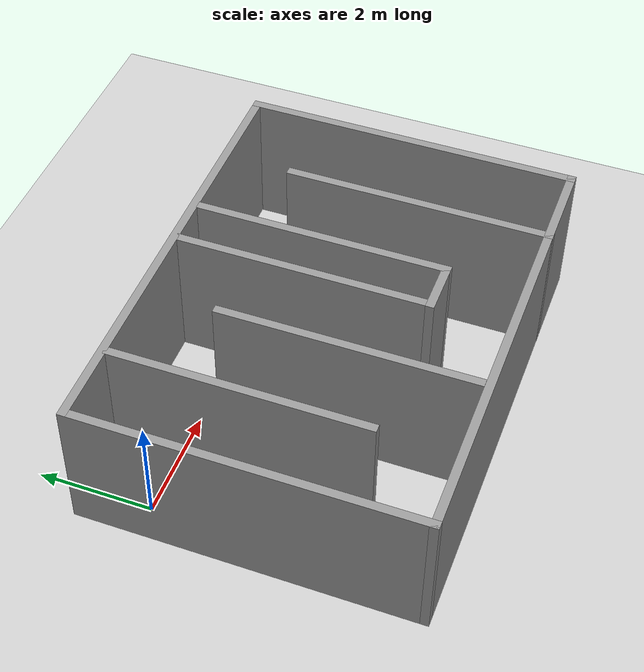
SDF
<sdf version="1.7">
 <world name="default">
  <light name="sun" type="directional">
   <pose>0 0 10 0 -0 0</pose>
   <diffuse>0.8 0.8 0.8 1</diffuse>
   <specular>0.2 0.2 0.2 1</specular>
   <attenuation>
    <range>1000</range>
    <constant>0.9</constant>
    <linear>0.01</linear>
    <quadratic>0.001</quadratic>
   </attenuation>
   <direction>-0.5 0.1 -0.9</direction>
   <spot><inner_angle>0</inner_angle><outer_angle>0</outer_angle><falloff>0</falloff></spot>
  </light>
  <model name="ground_plane">
   <static>1</static>
   <link name="link">
    <collision name="collision">
     <geometry><plane><normal>0 0 1</normal><size>100 100</size></plane></geometry>
     <surface><friction><ode><mu>100</mu><mu2>50</mu2></ode></friction></surface>
    </collision>
    <visual name="visual">
     <cast_shadows>0</cast_shadows>
     <geometry><plane><normal>0 0 1</normal><size>100 100</size></plane></geometry>
     <material>
      <script><uri>file://media/materials/scripts/gazebo.material</uri><name>Gazebo/Grey</name></script>
     </material>
    </visual>
   </link>
  </model>
  <gravity>0 0 -9.8</gravity>
  <magnetic_field>6e-06 2.3e-05 -4.2e-05</magnetic_field>
  <atmosphere type="adiabatic"/>
  <physics type="ode">
   <max_step_size>0.001</max_step_size>
   <real_time_factor>1</real_time_factor>
   <real_time_update_rate>1000</real_time_update_rate>
  </physics>
  <scene><ambient>0.4 0.4 0.4 1</ambient><background>0.7 0.7 0.7 1</background><shadows>1</shadows></scene>
  <audio><device>default</device></audio>
  <spherical_coordinates>
   <surface_model>EARTH_WGS84</surface_model>
   <latitude_deg>0</latitude_deg>
   <longitude_deg>0</longitude_deg>
   <elevation>0</elevation>
   <heading_deg>0</heading_deg>
  </spherical_coordinates>
  <model name="yoko">
   <pose>3.47685 -1.92795 0 0 -0 0</pose>
   <link name="Wall_0">
    <collision name="Wall_0_Collision">
     <geometry><box><size>6 0.15 2.5</size></box></geometry>
     <pose>0 0 1.25 0 -0 0</pose>
    </collision>
    <visual name="Wall_0_Visual">
     <pose>0 0 1.25 0 -0 0</pose>
     <geometry><box><size>6 0.15 2.5</size></box></geometry>
     <material>
      <script><uri>file://media/materials/scripts/gazebo.material</uri><name>Gazebo/Grey</name></script>
      <ambient>1 1 1 1</ambient>
     </material>
     <meta><layer>0</layer></meta>
    </visual>
    <pose>-3.925 0.063866 0 0 -0 1.5708</pose>
   </link>
   <link name="Wall_1">
    <collision name="Wall_1_Collision">
     <geometry><box><size>8 0.15 2.5</size></box></geometry>
     <pose>0 0 1.25 0 -0 0</pose>
    </collision>
    <visual name="Wall_1_Visual">
     <pose>0 0 1.25 0 -0 0</pose>
     <geometry><box><size>8 0.15 2.5</size></box></geometry>
     <material>
      <script><uri>file://media/materials/scripts/gazebo.material</uri><name>Gazebo/Grey</name></script>
      <ambient>1 1 1 1</ambient>
     </material>
     <meta><layer>0</layer></meta>
    </visual>
    <pose>0 2.98887 0 0 -0 0</pose>
   </link>
   <link name="Wall_11">
    <collision name="Wall_11_Collision">
     <geometry><box><size>4.5 0.15 2.5</size></box></geometry>
     <pose>0 0 1.25 0 -0 0</pose>
    </collision>
    <visual name="Wall_11_Visual">
     <pose>0 0 1.25 0 -0 0</pose>
     <geometry><box><size>4.5 0.15 2.5</size></box></geometry>
     <material>
      <script><uri>file://media/materials/scripts/gazebo.material</uri><name>Gazebo/Grey</name></script>
      <ambient>1 1 1 1</ambient>
     </material>
     <meta><layer>0</layer></meta>
    </visual>
    <pose>0.184704 0.814016 0 0 -0 1.5708</pose>
   </link>
   <link name="Wall_2">
    <collision name="Wall_2_Collision">
     <geometry><box><size>6 0.15 2.5</size></box></geometry>
     <pose>0 0 1.25 0 -0 0</pose>
    </collision>
    <visual name="Wall_2_Visual">
     <pose>0 0 1.25 0 -0 0</pose>
     <geometry><box><size>6 0.15 2.5</size></box></geometry>
     <material>
      <script><uri>file://media/materials/scripts/gazebo.material</uri><name>Gazebo/Grey</name></script>
      <ambient>1 1 1 1</ambient>
     </material>
     <meta><layer>0</layer></meta>
    </visual>
    <pose>3.925 0.063866 0 0 -0 -1.5708</pose>
   </link>
   <link name="Wall_22">
    <collision name="Wall_22_Collision">
     <geometry><box><size>4.5 0.15 2.5</size></box></geometry>
     <pose>0 0 1.25 0 -0 0</pose>
    </collision>
    <visual name="Wall_22_Visual">
     <pose>0 0 1.25 0 -0 0</pose>
     <geometry><box><size>4.5 0.15 2.5</size></box></geometry>
     <material>
      <script><uri>file://media/materials/scripts/gazebo.material</uri><name>Gazebo/Grey</name></script>
      <ambient>1 1 1 1</ambient>
     </material>
     <meta><layer>0</layer></meta>
    </visual>
    <pose>1.0334 0.679312 0 0 -0 1.5708</pose>
   </link>
   <link name="Wall_3">
    <collision name="Wall_3_Collision">
     <geometry><box><size>8 0.15 2.5</size></box></geometry>
     <pose>0 0 1.25 0 -0 0</pose>
    </collision>
    <visual name="Wall_3_Visual">
     <pose>0 0 1.25 0 -0 0</pose>
     <geometry><box><size>8 0.15 2.5</size></box></geometry>
     <material>
      <script><uri>file://media/materials/scripts/gazebo.material</uri><name>Gazebo/Grey</name></script>
      <ambient>1 1 1 1</ambient>
     </material>
     <meta><layer>0</layer></meta>
    </visual>
    <pose>0 -2.86113 0 0 -0 3.14159</pose>
   </link>
   <link name="Wall_34">
    <collision name="Wall_34_Collision">
     <geometry><box><size>4.5 0.15 2.5</size></box></geometry>
     <pose>0 0 1.25 0 -0 0</pose>
    </collision>
    <visual name="Wall_34_Visual">
     <pose>0 0 1.25 0 -0 0</pose>
     <geometry><box><size>4.5 0.15 2.5</size></box></geometry>
     <material>
      <script><uri>file://media/materials/scripts/gazebo.material</uri><name>Gazebo/Grey</name></script>
      <ambient>1 1 1 1</ambient>
     </material>
     <meta><layer>0</layer></meta>
    </visual>
    <pose>-2.56282 0.713453 0 0 -0 -1.5708</pose>
   </link>
   <link name="Wall_37">
    <collision name="Wall_37_Collision">
     <geometry><box><size>4.5 0.15 2.5</size></box></geometry>
     <pose>0 0 1.25 0 -0 0</pose>
    </collision>
    <visual name="Wall_37_Visual">
     <pose>0 0 1.25 0 -0 0</pose>
     <geometry><box><size>4.5 0.15 2.5</size></box></geometry>
     <material>
      <script><uri>file://media/materials/scripts/gazebo.material</uri><name>Gazebo/Grey</name></script>
      <ambient>1 1 1 1</ambient>
     </material>
     <meta><layer>0</layer></meta>
    </visual>
    <pose>-1.13282 -0.535047 0 0 -0 1.5708</pose>
   </link>
   <link name="Wall_42">
    <collision name="Wall_42_Collision">
     <geometry><box><size>1 0.15 2.5</size></box></geometry>
     <pose>0 0 1.25 0 -0 0</pose>
    </collision>
    <visual name="Wall_42_Visual">
     <pose>0 0 1.25 0 -0 0</pose>
     <geometry><box><size>1 0.15 2.5</size></box></geometry>
     <material>
      <script><uri>file://media/materials/scripts/gazebo.material</uri><name>Gazebo/Grey</name></script>
      <ambient>1 1 1 1</ambient>
     </material>
     <meta><layer>0</layer></meta>
    </visual>
    <pose>0.607226 -1.49568 0 0 -0 0</pose>
   </link>
   <link name="Wall_58">
    <collision name="Wall_58_Collision">
     <geometry><box><size>4.75 0.15 2.5</size></box></geometry>
     <pose>0 0 1.25 0 -0 0</pose>
    </collision>
    <visual name="Wall_58_Visual">
     <pose>0 0 1.25 0 -0 0</pose>
     <geometry><box><size>4.75 0.15 2.5</size></box></geometry>
     <material>
      <script><uri>file://media/materials/scripts/gazebo.material</uri><name>Gazebo/Grey</name></script>
      <ambient>1 1 1 1</ambient>
     </material>
     <meta><layer>0</layer></meta>
    </visual>
    <pose>2.40595 -0.563875 0 0 -0 -1.5708</pose>
   </link>
   <static>1</static>
  </model>
 </world>
</sdf>
